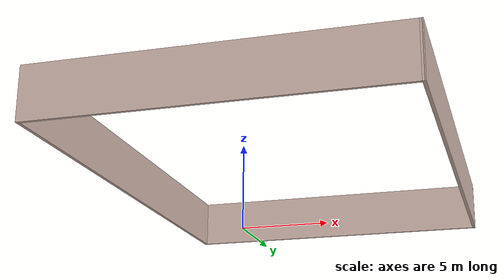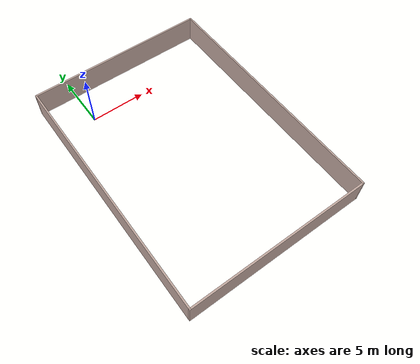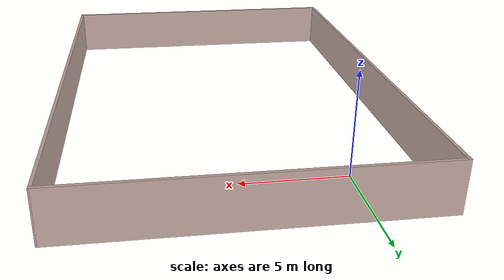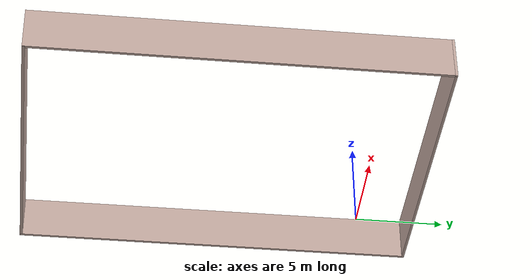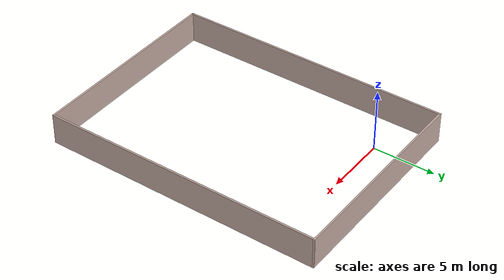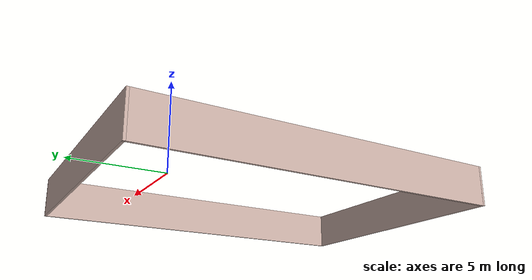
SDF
<?xml version='1.0'?>
<sdf version='1.7'>
  <model name='wall'>
    <pose>4.7673 -7.90254 0 0 -0 0</pose>
    <link name='Wall_3'>
      <collision name='Wall_3_Collision'>
        <geometry>
          <box>
            <size>22.5828 0.15 2.5</size>
          </box>
        </geometry>
        <pose>0 0 1.25 0 -0 0</pose>
      </collision>
      <visual name='Wall_3_Visual'>
        <pose>0 0 1.25 0 -0 0</pose>
        <geometry>
          <box>
            <size>22.5828 0.15 2.5</size>
          </box>
        </geometry>
        <material>
          <script>
            <uri>file://media/materials/scripts/gazebo.material</uri>
            <name>Gazebo/Grey</name>
          </script>
          <ambient>0.760784 0.662745 0.627451 1</ambient>
        </material>
        <meta>
          <layer>0</layer>
        </meta>
      </visual>
      <pose>-8.1733 3.8e-05 0 0 -0 -1.5708</pose>
    </link>
    <link name='Wall_4'>
      <collision name='Wall_4_Collision'>
        <geometry>
          <box>
            <size>16.4565 0.15 2.5</size>
          </box>
        </geometry>
        <pose>0 0 1.25 0 -0 0</pose>
      </collision>
      <visual name='Wall_4_Visual'>
        <pose>0 0 1.25 0 -0 0</pose>
        <geometry>
          <box>
            <size>16.4565 0.15 2.5</size>
          </box>
        </geometry>
        <material>
          <script>
            <uri>file://media/materials/scripts/gazebo.material</uri>
            <name>Gazebo/Grey</name>
          </script>
          <ambient>0.760784 0.662745 0.627451 1</ambient>
        </material>
        <meta>
          <layer>0</layer>
        </meta>
      </visual>
      <pose>-0.020209 -11.2164 0 0 -0 4e-06</pose>
    </link>
    <link name='Wall_5'>
      <collision name='Wall_5_Collision'>
        <geometry>
          <box>
            <size>22.5828 0.15 2.5</size>
          </box>
        </geometry>
        <pose>0 0 1.25 0 -0 0</pose>
      </collision>
      <visual name='Wall_5_Visual'>
        <pose>0 0 1.25 0 -0 0</pose>
        <geometry>
          <box>
            <size>22.5828 0.15 2.5</size>
          </box>
        </geometry>
        <material>
          <script>
            <uri>file://media/materials/scripts/gazebo.material</uri>
            <name>Gazebo/Grey</name>
          </script>
          <ambient>0.760784 0.662745 0.627451 1</ambient>
        </material>
        <meta>
          <layer>0</layer>
        </meta>
      </visual>
      <pose>8.15311 -9e-06 0 0 -0 1.5726</pose>
    </link>
    <link name='Wall_6'>
      <collision name='Wall_6_Collision'>
        <geometry>
          <box>
            <size>16.4565 0.15 2.5</size>
          </box>
        </geometry>
        <pose>0 0 1.25 0 -0 0</pose>
      </collision>
      <visual name='Wall_6_Visual'>
        <pose>0 0 1.25 0 -0 0</pose>
        <geometry>
          <box>
            <size>16.4565 0.15 2.5</size>
          </box>
        </geometry>
        <material>
          <script>
            <uri>file://media/materials/scripts/gazebo.material</uri>
            <name>Gazebo/Grey</name>
          </script>
          <ambient>0.760784 0.662745 0.627451 1</ambient>
        </material>
        <meta>
          <layer>0</layer>
        </meta>
      </visual>
      <pose>-0.020209 11.2165 0 0 -0 3.14158</pose>
    </link>
    <static>1</static>
  </model>
</sdf>
